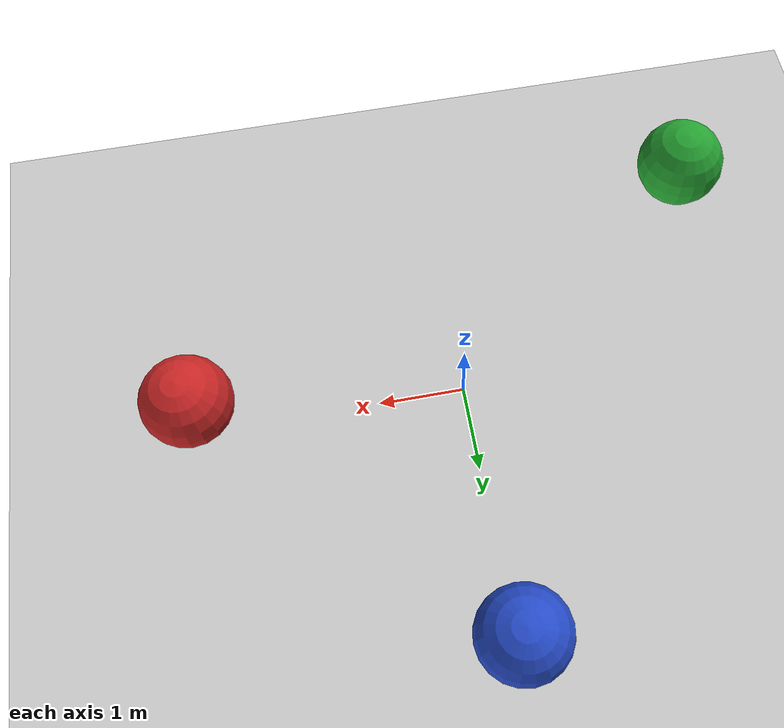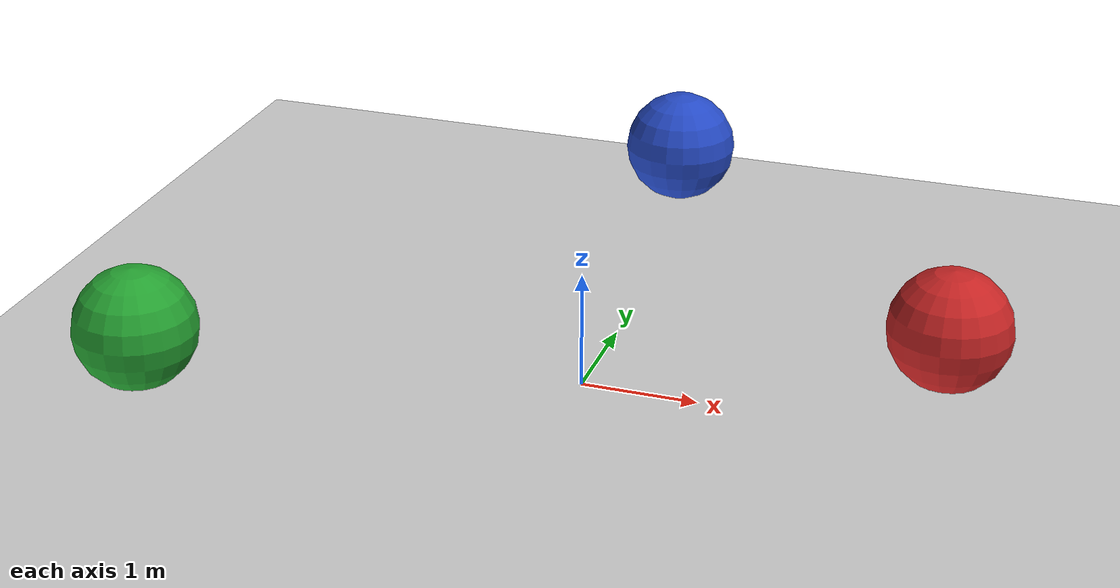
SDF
<?xml version="1.0" ?>
<sdf version="1.5">
  <world name="default">
    <!-- 地面 -->
    <include>
      <uri>model://ground_plane</uri>
    </include>

    <!-- 光照 -->
    <include>
      <uri>model://sun</uri>
    </include>

    <!-- 静态障碍物1 -->
    <model name="obstacle1">
      <pose>3 0 1 0 0 0</pose>
      <static>true</static>
      <link name="link">
        <collision name="collision">
          <geometry>
            <sphere>
              <radius>0.5</radius>
            </sphere>
          </geometry>
        </collision>
        <visual name="visual">
          <geometry>
            <sphere>
              <radius>0.5</radius>
            </sphere>
          </geometry>
          <material>
            <script>
              <uri>file://media/materials/scripts/gazebo.material</uri>
              <name>Gazebo/Red</name>
            </script>
          </material>
        </visual>
      </link>
    </model>

    <!-- 静态障碍物2 -->
    <model name="obstacle2">
      <pose>0 3 1 0 0 0</pose>
      <static>true</static>
      <link name="link">
        <collision name="collision">
          <geometry>
            <sphere>
              <radius>0.5</radius>
            </sphere>
          </geometry>
        </collision>
        <visual name="visual">
          <geometry>
            <sphere>
              <radius>0.5</radius>
            </sphere>
          </geometry>
          <material>
            <script>
              <uri>file://media/materials/scripts/gazebo.material</uri>
              <name>Gazebo/Blue</name>
            </script>
          </material>
        </visual>
      </link>
    </model>

    <!-- 静态障碍物3 -->
    <model name="obstacle3">
      <pose>-3 -2 1 0 0 0</pose>
      <static>true</static>
      <link name="link">
        <collision name="collision">
          <geometry>
            <sphere>
              <radius>0.5</radius>
            </sphere>
          </geometry>
        </collision>
        <visual name="visual">
          <geometry>
            <sphere>
              <radius>0.5</radius>
            </sphere>
          </geometry>
          <material>
            <script>
              <uri>file://media/materials/scripts/gazebo.material</uri>
              <name>Gazebo/Green</name>
            </script>
          </material>
        </visual>
      </link>
    </model>

    <!-- 风扰动插件 -->
    <plugin name="wind_plugin" filename="libgazebo_wind_plugin.so">
      <frameId>world</frameId>
      <robotNamespace/>
      <windDirection>1 0 0</windDirection>
      <windForceMean>1.0</windForceMean>
      <windForceVariance>0.5</windForceVariance>
      <windGustDirection>1 0 0</windGustDirection>
      <windGustDuration>2</windGustDuration>
      <windGustStart>10</windGustStart>
      <windGustForceMean>3</windGustForceMean>
      <windGustForceVariance>1</windGustForceVariance>
    </plugin>

    <!-- 物理引擎设置 -->
    <physics name='default_physics' default='0' type='ode'>
      <max_step_size>0.004</max_step_size>
      <real_time_factor>1</real_time_factor>
      <real_time_update_rate>250</real_time_update_rate>
    </physics>
  </world>
</sdf>
